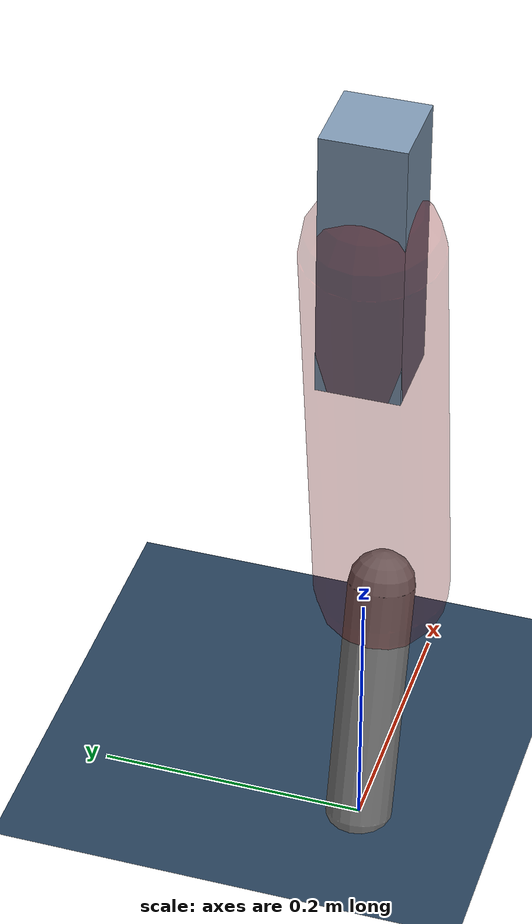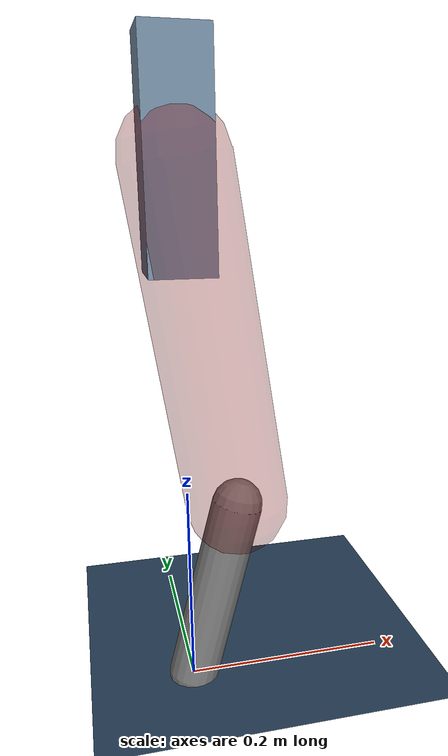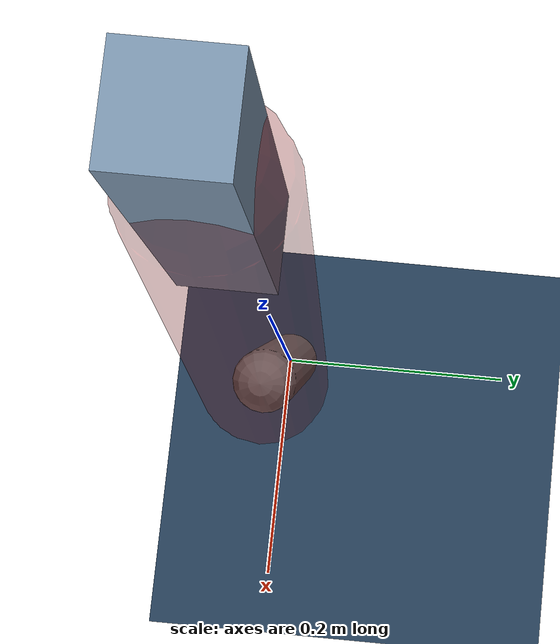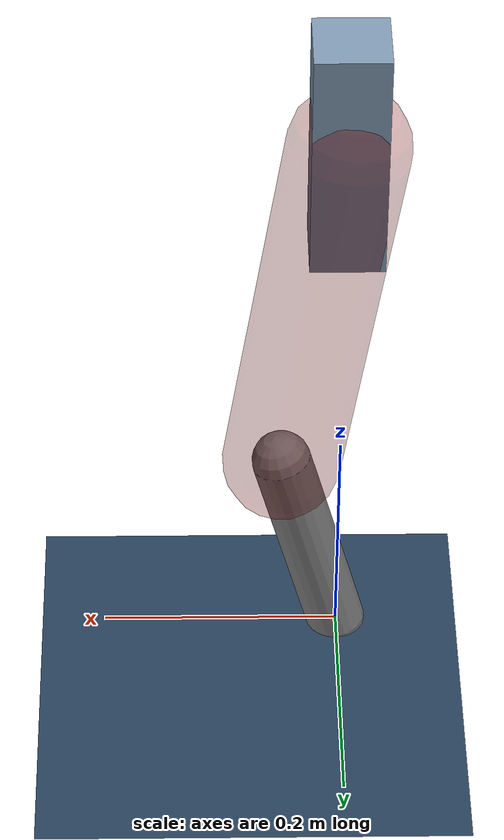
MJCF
<mujoco model="Hopper2D">
	<compiler inertiafromgeom="true" angle="radian" />
	<option timestep="0.001" integrator="implicit" cone="elliptic" solver="Newton" tolerance="1e-10" />

	<default>
		<geom contype="1" conaffinity="1" condim="3" friction="2 0.005 0.0001" solref="0.005 1" />
		<joint limited="true" damping="0.1" />
	</default>

	<asset>
		<texture name="skybox" type="skybox" builtin="gradient" rgb1=".4 .6 .8" rgb2="0 0 0" width="800" height="800" />
		<texture name="grid" type="2d" builtin="checker" rgb1=".1 .2 .3" rgb2=".2 .3 .4" width="300" height="300" mark="edge" markrgb=".2 .3 .4" />
		<material name="ground" texture="grid" texrepeat="1 1" texuniform="true" reflectance="0.1" />
		<material name="leg" rgba="0.5 0.6 0.7 1" />
	</asset>

	<worldbody>

		<geom name="floor" type="plane" size="5 5 0.25" material="ground" />

		<light directional="false" diffuse="0.8 0.8 0.8" specular="0.3 0.3 0.3" pos="0 0 2" dir="0 0 -1" />
		<light mode="targetbodycom" target="base" directional="false" diffuse="0.8 0.8 0.8" specular="0.3 0.3 0.3" pos="0 0 2" dir="0 0 -1" />

		<camera name="fixed" pos="0 -2 1" xyaxes="1 0 0 0 0 1" />
		<camera name="tracking" mode="trackcom" pos="0 -3 1" />

		<body name="root" pos="0 0 0.5098932548388957">
			<joint name="slide_x" type="slide" axis="1 0 0" range="-100 100" />
			<joint name="slide_z" type="slide" axis="0 0 1" range="0 10" />

			<body name="base" pos="0 0 0">
				<geom name="torso" type="box" size="0.03 0.03 0.1" mass="3.0679999999999996" material="leg" />

				<body name="link1" pos="0 0 0" euler="0 1.4218391273376814 0">
					<joint type="hinge" axis="0 -1 0" pos="0 0 0" name="hinge1" limited="true" range="-3.14 3.14" stiffness="0" damping="0.1" />
					<geom name="thigh" type="capsule" fromto="0 0 0 0.3290816685328438 0 0" size="0.05" rgba="0.5 0 0 0.3" mass="1.0683205050386784" />

					<body name="link2" pos="0.3290816685328438 0 0" euler="0 0.40778634229686167 0">
						<joint type="hinge" axis="0 -1 0" pos="0 0 0" name="hinge2" limited="true" range="-3.14 3.14" stiffness="0" damping="0.1" />
						<geom name="shank" type="capsule" fromto="0 0 0 0.1908115863060519 0 0" size="0.025" mass="0.3931304276754467" />

					</body>
				</body>
			</body>
		</body>
	</worldbody>

	<actuator>
		<motor name="torque1" joint="hinge1" ctrlrange="-41.79673204849564 41.79673204849564" ctrllimited="true" gear="1" />
		<motor name="torque2" joint="hinge2" ctrlrange="-209.43961593353666 209.43961593353666" ctrllimited="true" gear="1" />
	</actuator>
</mujoco>
